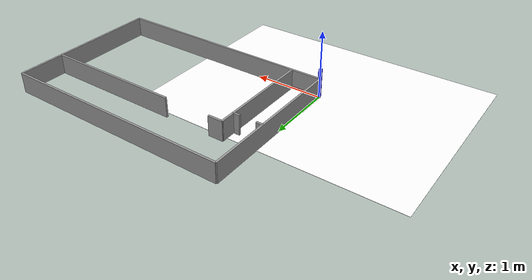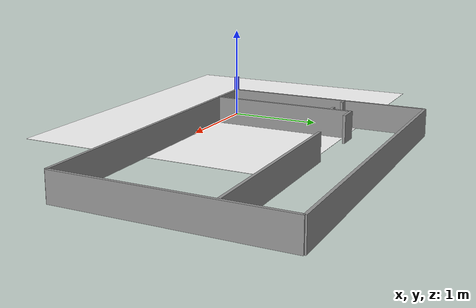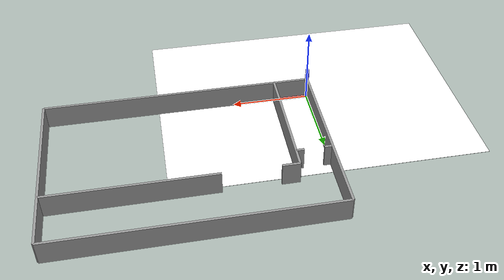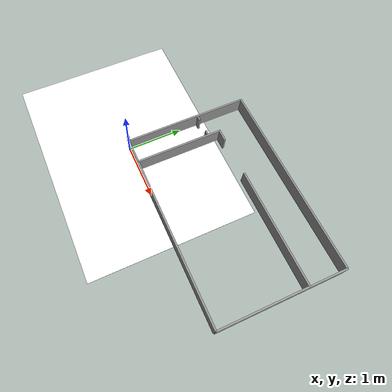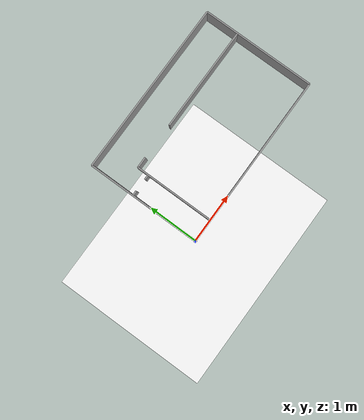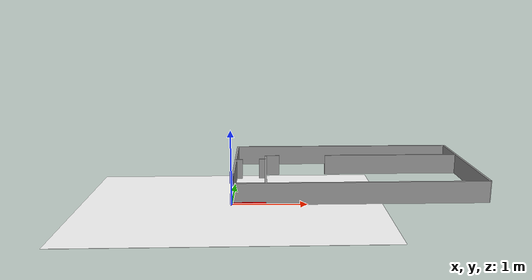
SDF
<?xml version="1.0" ?>
<sdf version="1.8">
  <world name="pinky_factory">
    <physics name="1ms" type="ignored">
      <max_step_size>0.001</max_step_size>
      <real_time_factor>1.0</real_time_factor>
    </physics>

    <plugin
      filename="gz-sim-physics-system"
      name="gz::sim::systems::Physics">
    </plugin>
    <plugin
      filename="gz-sim-sensors-system"
      name="gz::sim::systems::Sensors">
      <render_engine>ogre2</render_engine>
    </plugin>
    <plugin
      filename="gz-sim-user-commands-system"
      name="gz::sim::systems::UserCommands">
    </plugin>
    <plugin
      filename="gz-sim-scene-broadcaster-system"
      name="gz::sim::systems::SceneBroadcaster">
    </plugin>
    <plugin filename="gz-sim-imu-system"
        name="gz::sim::systems::Imu">
    </plugin>

    <!--light-->
    <light type="directional" name="sun">
      <cast_shadows>false</cast_shadows>
      <pose>0 0 6 0 0 0</pose>
      <diffuse>1 1 1 1</diffuse>
      <specular>1 1 1 1</specular>
      <attenuation>
        <range>1000</range>
        <constant>1</constant>
        <linear>0</linear>
        <quadratic>0</quadratic>
      </attenuation>
      <direction>0 0 -1</direction>
    </light>

    <model name="logo">
      <pose>0 0 0 0 0 0</pose>
      <static>true</static>
      <link name="logo_link">
        <visual name="logo_visual">
          <geometry>
            <plane>
              <normal>0 0 1</normal>
              <size>4 3</size>
            </plane>
          </geometry>
          <material>
            <diffuse>1 1 1 1</diffuse>
            <specular>0.6 0.6 0.6 1</specular>
            <pbr>
              <metal>
                <albedo_map>file://img/pinklab_half.jpg</albedo_map>
              </metal>
            </pbr>
          </material>
        </visual>
        <collision name="logo_collision">
          <geometry>
            <plane>
              <normal>0 0 1</normal>
              <size>4 2</size>
            </plane>
          </geometry>
          <surface>
            <contact>
              <collide_without_contact>true</collide_without_contact>
            </contact>
          </surface>
        </collision>
      </link>
    </model>

    <!-- ===== 외벽 4면 ===== -->

    <!-- Wall 1: 남쪽 벽 -->
    <model name="wall_1">
      <static>true</static>
      <pose>1.7215 0 0.15 0 0 0</pose>
      <link name="link">
        <collision name="collision">
          <geometry><box><size>3.443 0.03 0.3</size></box></geometry>
        </collision>
        <visual name="visual">
          <geometry><box><size>3.443 0.03 0.3</size></box></geometry>
          <material>
            <ambient>0.3 0.3 0.3 1</ambient>
            <diffuse>0.6 0.6 0.6 1</diffuse>
            <specular>0.1 0.1 0.1 1</specular>
          </material>
        </visual>
      </link>
    </model>

    <!-- Wall 2: 동쪽 벽 -->
    <model name="wall_2">
      <static>true</static>
      <pose>3.443 1.125 0.15 0 0 0</pose>
      <link name="link">
        <collision name="collision">
          <geometry><box><size>0.03 2.25 0.3</size></box></geometry>
        </collision>
        <visual name="visual">
          <geometry><box><size>0.03 2.25 0.3</size></box></geometry>
          <material>
            <ambient>0.3 0.3 0.3 1</ambient>
            <diffuse>0.6 0.6 0.6 1</diffuse>
            <specular>0.1 0.1 0.1 1</specular>
          </material>
        </visual>
      </link>
    </model>

    <!-- Wall 3: 북쪽 벽 -->
    <model name="wall_3">
      <static>true</static>
      <pose>1.7215 2.25 0.15 0 0 0</pose>
      <link name="link">
        <collision name="collision">
          <geometry><box><size>3.443 0.03 0.3</size></box></geometry>
        </collision>
        <visual name="visual">
          <geometry><box><size>3.443 0.03 0.3</size></box></geometry>
          <material>
            <ambient>0.3 0.3 0.3 1</ambient>
            <diffuse>0.6 0.6 0.6 1</diffuse>
            <specular>0.1 0.1 0.1 1</specular>
          </material>
        </visual>
      </link>
    </model>

    <!-- Wall 4: 서쪽 벽 -->
    <model name="wall_4">
      <static>true</static>
      <pose>0 1.125 0.15 0 0 0</pose>
      <link name="link">
        <collision name="collision">
          <geometry><box><size>0.03 2.25 0.3</size></box></geometry>
        </collision>
        <visual name="visual">
          <geometry><box><size>0.03 2.25 0.3</size></box></geometry>
          <material>
            <ambient>0.3 0.3 0.3 1</ambient>
            <diffuse>0.6 0.6 0.6 1</diffuse>
            <specular>0.1 0.1 0.1 1</specular>
          </material>
        </visual>
      </link>
    </model>

    <!-- 0,0 좌표 시각화용 XYZ 화살표 -->
    <model name="origin_axes">
      <static>true</static>
      <pose>0 0 0 0 0 0</pose>
      <link name="link">
        <!-- X축 (빨강) -->
        <visual name="x_axis">
          <pose>0.225 0 0.02 0 0 0</pose>
          <geometry>
            <box>
              <size>0.45 0.04 0.04</size>
            </box>
          </geometry>
          <material>
            <ambient>1 0 0 1</ambient>
            <diffuse>1 0 0 1</diffuse>
            <specular>0.3 0.3 0.3 1</specular>
          </material>
        </visual>
        <!-- Y축 (초록) -->
        <visual name="y_axis">
          <pose>0 0.225 0.02 0 0 0</pose>
          <geometry>
            <box>
              <size>0.04 0.45 0.04</size>
            </box>
          </geometry>
          <material>
            <ambient>0 1 0 1</ambient>
            <diffuse>0 1 0 1</diffuse>
            <specular>0.3 0.3 0.3 1</specular>
          </material>
        </visual>
        <!-- Z축 (파랑) -->
        <visual name="z_axis">
          <pose>0 0 0.225 0 0 0</pose>
          <geometry>
            <box>
              <size>0.04 0.04 0.45</size>
            </box>
          </geometry>
          <material>
            <ambient>0 0 1 1</ambient>
            <diffuse>0 0 1 1</diffuse>
            <specular>0.3 0.3 0.3 1</specular>
          </material>
        </visual>
      </link>
    </model>

    <!-- 내부 벽 -->
    <!-- ===== 내부 벽 구조 ===== -->

    <!-- Inner Wall 1 : 보안출입구 - 응접실 사이 벽 (1)-->
    <model name="wall_inner_1">
      <static>true</static>
      <pose>0.05 1.35 0.15 0 0 0</pose>
      <link name="link">
        <collision name="collision">
          <geometry><box><size>0.10 0.03 0.3</size></box></geometry>
        </collision>
        <visual name="visual">
          <geometry><box><size>0.10 0.03 0.3</size></box></geometry>
          <material>
            <ambient>0.3 0.3 0.3 1</ambient>
            <diffuse>0.6 0.6 0.6 1</diffuse>
            <specular>0.1 0.1 0.1 1</specular>
          </material>
        </visual>
      </link>
    </model>

    <!-- Inner Wall 2 : 보안출입구 - 응접실 사이 벽 (2)-->
    <model name="wall_inner_2">
      <static>true</static>
      <pose>0.4 1.35 0.15 0 0 0</pose>
      <link name="link">
        <collision name="collision">
          <geometry><box><size>0.10 0.03 0.3</size></box></geometry>
        </collision>
        <visual name="visual">
          <geometry><box><size>0.10 0.03 0.3</size></box></geometry>
          <material>
            <ambient>0.3 0.3 0.3 1</ambient>
            <diffuse>0.6 0.6 0.6 1</diffuse>
            <specular>0.1 0.1 0.1 1</specular>
          </material>
        </visual>
      </link>
    </model>

    <!-- Inner Wall 3 : 응접실 - 식당 사이 벽 -->
    <model name="wall_inner_3">
      <static>true</static>
      <pose>0.45 0.7875 0.15 0 0 0</pose>
      <link name="link">
        <collision name="collision">
          <geometry><box><size>0.03 1.575 0.3</size></box></geometry>
        </collision>
        <visual name="visual">
          <geometry><box><size>0.03 1.575 0.3</size></box></geometry>
          <material>
            <ambient>0.3 0.3 0.3 1</ambient>
            <diffuse>0.6 0.6 0.6 1</diffuse>
            <specular>0.1 0.1 0.1 1</specular>
          </material>
        </visual>
      </link>
    </model>

    <!-- Inner Wall 4 : 식당 - 공용공간 사이 벽 (1)-->
    <model name="wall_inner_4">
      <static>true</static>
      <pose>0.5525 1.575 0.15 0 0 0</pose>
      <link name="link">
        <collision name="collision">
          <geometry><box><size>0.225 0.03 0.3</size></box></geometry>
        </collision>
        <visual name="visual">
          <geometry><box><size>0.225 0.03 0.3</size></box></geometry>
          <material>
            <ambient>0.3 0.3 0.3 1</ambient>
            <diffuse>0.6 0.6 0.6 1</diffuse>
            <specular>0.1 0.1 0.1 1</specular>
          </material>
        </visual>
      </link>
    </model>

    <!-- Inner Wall 5 : 식당 - 공용공간 사이 벽 (1)-->
    <model name="wall_inner_5">
      <static>true</static>
      <pose>2.409 1.575 0.15 0 0 0</pose>
      <link name="link">
        <collision name="collision">
          <geometry><box><size>2.068 0.03 0.3</size></box></geometry>
        </collision>
        <visual name="visual">
          <geometry><box><size>2.068 0.03 0.3</size></box></geometry>
          <material>
            <ambient>0.3 0.3 0.3 1</ambient>
            <diffuse>0.6 0.6 0.6 1</diffuse>
            <specular>0.1 0.1 0.1 1</specular>
          </material>
        </visual>
      </link>
    </model>

  <model name="camera">
    <static>true</static>
      <pose>0 0 1.6 0 1.57 1.57</pose>
      <link name="link">
        <pose>0.05 0.05 0.05 0 0 0</pose>
        <inertial>
          <mass>0.1</mass>
          <inertia>
            <ixx>0.000166667</ixx>
            <iyy>0.000166667</iyy>
            <izz>0.000166667</izz>
          </inertia>
        </inertial>
        <collision name="collision">
          <geometry>
            <box>
              <size>0.1 0.1 0.1</size>
            </box>
          </geometry>
        </collision>
        <sensor name="camera" type="camera">
          <camera>
            <horizontal_fov>2.094</horizontal_fov>
            <image>
              <width>640</width>
              <height>480</height>
            </image>
            <clip>
              <near>0.1</near>
              <far>100</far>
            </clip>
          </camera>
          <always_on>1</always_on>
          <update_rate>30</update_rate>
          <visualize>true</visualize>
          <topic>camera</topic>
        </sensor>
      </link>
    </model>
  </world>
</sdf>
